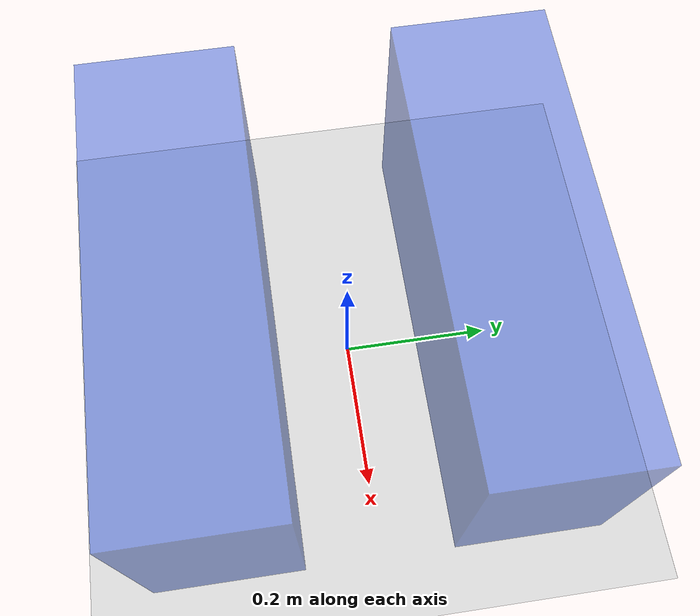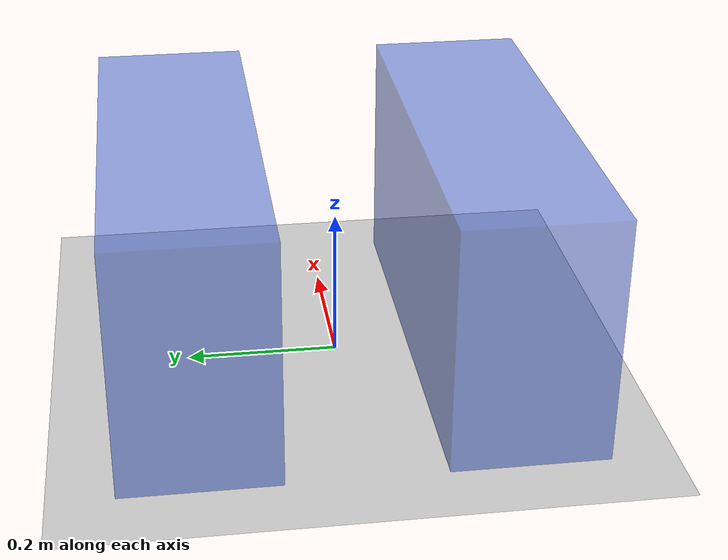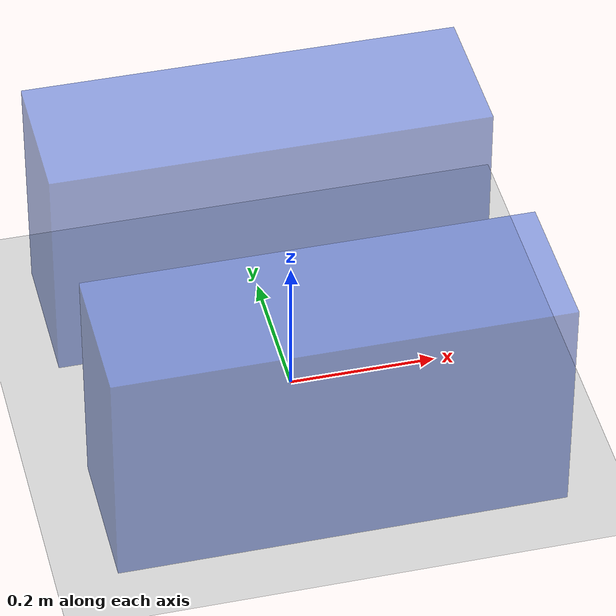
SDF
<?xml version="1.0" ?>
<sdf version="1.5">
  <world name="default">
    <!-- A global light source -->
    <include>
      <uri>model://sun</uri>
    </include>
    <!-- A ground plane -->
    <include>
      <uri>model://ground_plane</uri>
    </include>
    <include>
      <uri>model://uav_stand</uri>
    </include>
    <physics name='default_physics' default='0' type='ode'>
      <gravity>0 0 -9.80665</gravity>
      <ode>
        <solver>
          <type>quick</type>
          <iters>10</iters>
          <sor>1.3</sor>
          <use_dynamic_moi_rescaling>0</use_dynamic_moi_rescaling>
        </solver>
        <constraints>
          <cfm>0</cfm>
          <erp>0.2</erp>
          <contact_max_correcting_vel>100</contact_max_correcting_vel>
          <contact_surface_layer>0.001</contact_surface_layer>
        </constraints>
      </ode>
      <max_step_size>0.002</max_step_size>
      <real_time_factor>1</real_time_factor>
      <real_time_update_rate>500</real_time_update_rate>
      <magnetic_field>6e-06 2.3e-05 -4.2e-05</magnetic_field>
    </physics>
  </world>
</sdf>

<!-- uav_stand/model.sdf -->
<sdf version='1.6'>
  <model name='uav_stand'>
  <static>true</static>

    <link name='base_link'>
      <pose>0 0 0.1625 0 0 0</pose>
      <collision name='collision_left'>
        <pose>0 0.2 0 0 0 0</pose>
        <geometry>
          <box>
            <size>0.6 0.2 0.325</size>
          </box>
        </geometry>
      </collision>

      <collision name='collision_base_right'>
        <pose>0 -0.2 0 0 0 0</pose>
        <geometry>
          <box>
            <size>0.6 0.2 0.325</size>
          </box>
        </geometry>
      </collision>

	  <visual name='visual_left'>
        <pose>0 0.2 0 0 0 0</pose>
        <geometry>
          <box>
            <size>0.6 0.2 0.325</size>
          </box>
        </geometry>
        <material>
          <lighting>1</lighting>
			  <script>
			    <name>Gazebo/BlueTransparent</name>
				<uri>file://media/materials/scripts/gazebo.material</uri>
			  </script>
        </material>
      </visual>

	  <visual name='visual_right'>
        <pose>0 -0.2 0 0 0 0</pose>
        <geometry>
          <box>
            <size>0.6 0.2 0.325</size>
          </box>
        </geometry>
        <material>
          <lighting>1</lighting>
			  <script>
			    <name>Gazebo/BlueTransparent</name>
				<uri>file://media/materials/scripts/gazebo.material</uri>
			  </script>
        </material>
      </visual>
	</link>
  </model>
</sdf>
